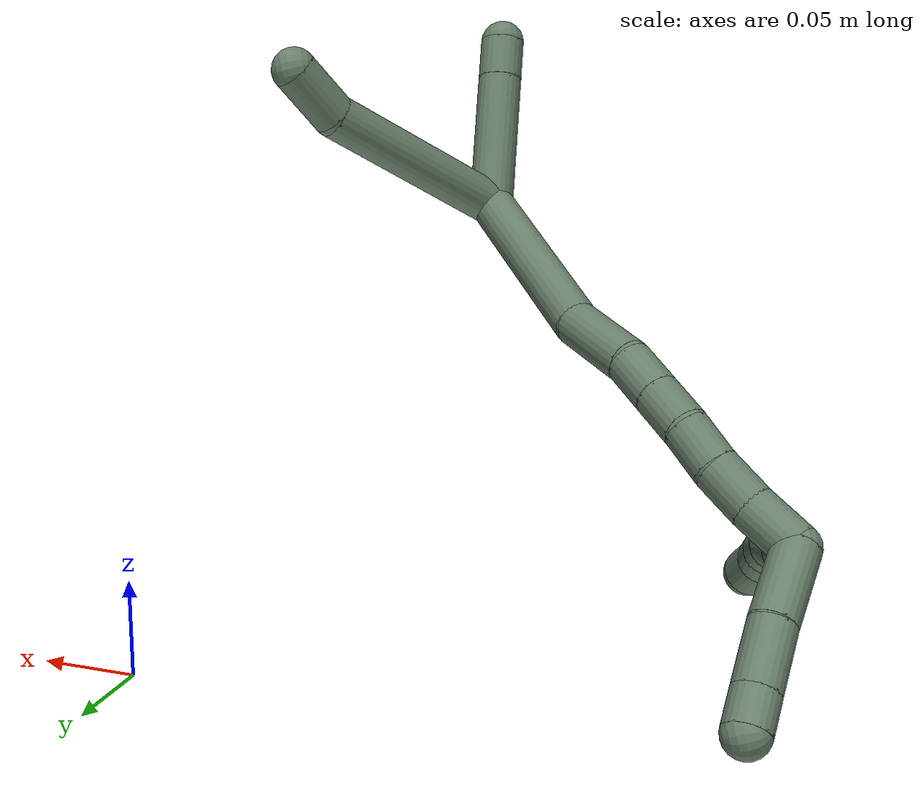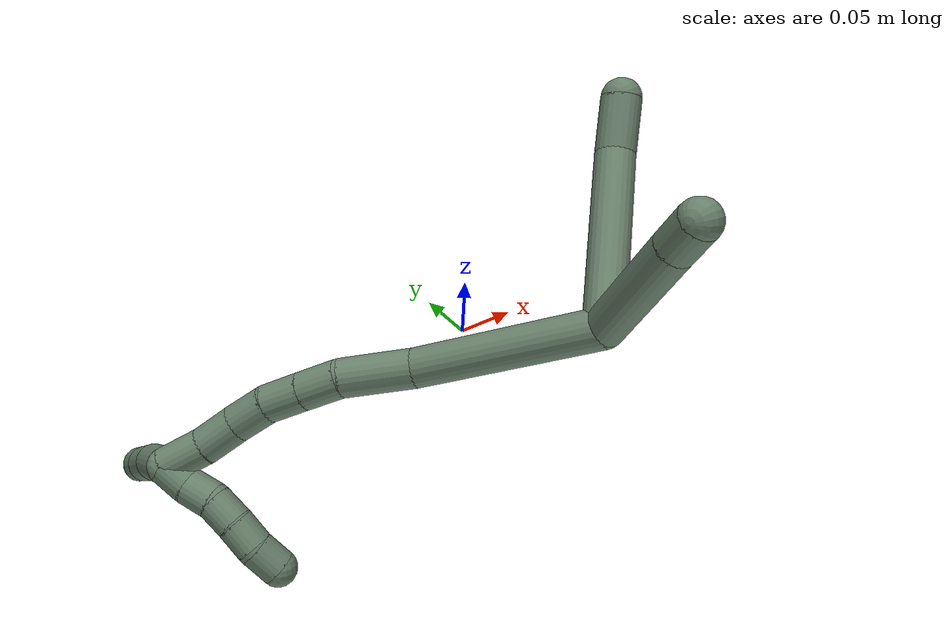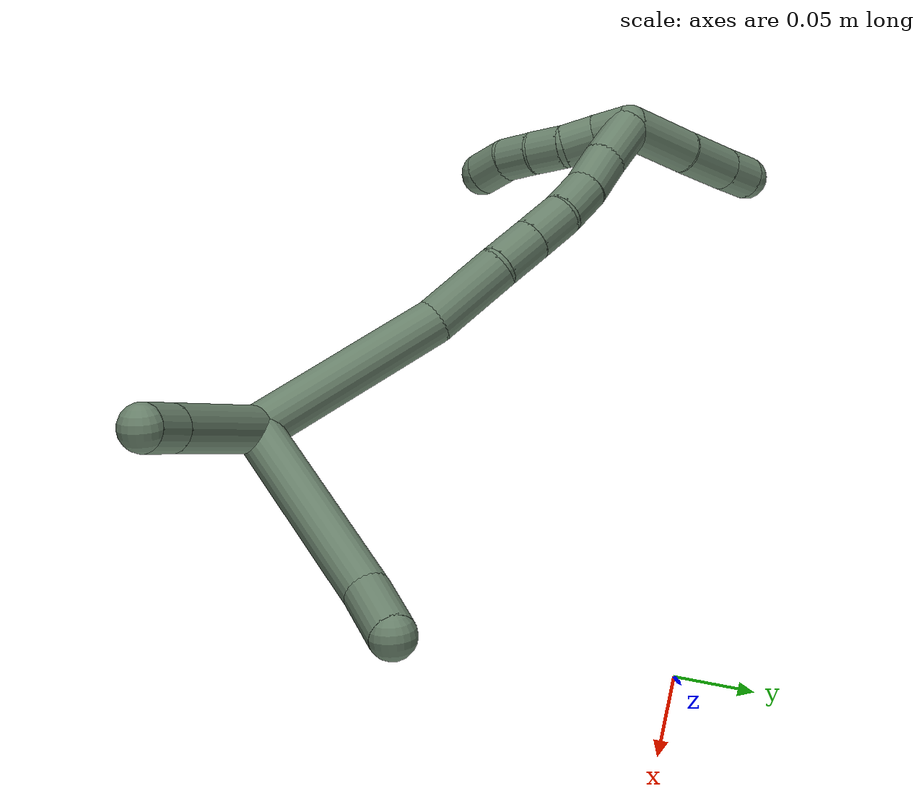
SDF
<sdf version="1.7">
 <world name="default">
  <model name="17">
   <static>0</static>
   <link name="17">
    <collision name="collision-cylinder-e_1_2_8">
     <pose>0.023086 0.041493 -0.032295 -2.23217 0.413718 -0.810968</pose>
     <geometry><cylinder><radius>0.0125</radius><length>0.114849</length></cylinder></geometry>
     <surface>
      <friction><ode><mu>1.16</mu><mu2>1.16</mu2><slip1>0</slip1><slip2>0</slip2></ode></friction>
      <contact><ode><kp>1e+06</kp><kd>1</kd><max_vel>0</max_vel><min_depth>0.001</min_depth></ode></contact>
     </surface>
    </collision>
    <visual name="visual-cylinder-e_1_2_8">
     <pose>0.023086 0.041493 -0.032295 -2.23217 0.413718 -0.810968</pose>
     <geometry><cylinder><radius>0.0125</radius><length>0.114849</length></cylinder></geometry>
     <material><ambient>0.415686 0.509804 0.423529 1</ambient></material>
    </visual>
    <collision name="collision-cylinder-e_2_8_6">
     <pose>0.057373 0.095111 -0.070624 -2.03257 0.691037 -1.05297</pose>
     <geometry><cylinder><radius>0.0125</radius><length>0.035151</length></cylinder></geometry>
     <surface>
      <friction><ode><mu>1.16</mu><mu2>1.16</mu2><slip1>0</slip1><slip2>0</slip2></ode></friction>
      <contact><ode><kp>1e+06</kp><kd>1</kd><max_vel>0</max_vel><min_depth>0.001</min_depth></ode></contact>
     </surface>
    </collision>
    <visual name="visual-cylinder-e_2_8_6">
     <pose>0.057373 0.095111 -0.070624 -2.03257 0.691037 -1.05297</pose>
     <geometry><cylinder><radius>0.0125</radius><length>0.035151</length></cylinder></geometry>
     <material><ambient>0.415686 0.509804 0.423529 1</ambient></material>
    </visual>
    <collision name="collision-cylinder-e_1_2_9">
     <pose>0.036976 -0.001656 0.009995 0.164209 1.30336 0.125386</pose>
     <geometry><cylinder><radius>0.0125</radius><length>0.076678</length></cylinder></geometry>
     <surface>
      <friction><ode><mu>1.16</mu><mu2>1.16</mu2><slip1>0</slip1><slip2>0</slip2></ode></friction>
      <contact><ode><kp>1e+06</kp><kd>1</kd><max_vel>0</max_vel><min_depth>0.001</min_depth></ode></contact>
     </surface>
    </collision>
    <visual name="visual-cylinder-e_1_2_9">
     <pose>0.036976 -0.001656 0.009995 0.164209 1.30336 0.125386</pose>
     <geometry><cylinder><radius>0.0125</radius><length>0.076678</length></cylinder></geometry>
     <material><ambient>0.415686 0.509804 0.423529 1</ambient></material>
    </visual>
    <collision name="collision-cylinder-e_2_9_5">
     <pose>0.085194 -0.004005 0.023009 0.225409 1.30196 0.172012</pose>
     <geometry><cylinder><radius>0.0125</radius><length>0.023322</length></cylinder></geometry>
     <surface>
      <friction><ode><mu>1.16</mu><mu2>1.16</mu2><slip1>0</slip1><slip2>0</slip2></ode></friction>
      <contact><ode><kp>1e+06</kp><kd>1</kd><max_vel>0</max_vel><min_depth>0.001</min_depth></ode></contact>
     </surface>
    </collision>
    <visual name="visual-cylinder-e_2_9_5">
     <pose>0.085194 -0.004005 0.023009 0.225409 1.30196 0.172012</pose>
     <geometry><cylinder><radius>0.0125</radius><length>0.023322</length></cylinder></geometry>
     <material><ambient>0.415686 0.509804 0.423529 1</ambient></material>
    </visual>
    <collision name="collision-cylinder-e_1_2_10">
     <pose>-0.047094 0.029453 0.01947 -0.986705 -0.927476 0.525394</pose>
     <geometry><cylinder><radius>0.0125</radius><length>0.117718</length></cylinder></geometry>
     <surface>
      <friction><ode><mu>1.16</mu><mu2>1.16</mu2><slip1>0</slip1><slip2>0</slip2></ode></friction>
      <contact><ode><kp>1e+06</kp><kd>1</kd><max_vel>0</max_vel><min_depth>0.001</min_depth></ode></contact>
     </surface>
    </collision>
    <visual name="visual-cylinder-e_1_2_10">
     <pose>-0.047094 0.029453 0.01947 -0.986705 -0.927476 0.525394</pose>
     <geometry><cylinder><radius>0.0125</radius><length>0.117718</length></cylinder></geometry>
     <material><ambient>0.415686 0.509804 0.423529 1</ambient></material>
    </visual>
    <collision name="collision-cylinder-e_2_10_11">
     <pose>-0.110179 0.071459 0.051128 -0.800069 -0.740519 0.325355</pose>
     <geometry><cylinder><radius>0.0125</radius><length>0.047406</length></cylinder></geometry>
     <surface>
      <friction><ode><mu>1.16</mu><mu2>1.16</mu2><slip1>0</slip1><slip2>0</slip2></ode></friction>
      <contact><ode><kp>1e+06</kp><kd>1</kd><max_vel>0</max_vel><min_depth>0.001</min_depth></ode></contact>
     </surface>
    </collision>
    <visual name="visual-cylinder-e_2_10_11">
     <pose>-0.110179 0.071459 0.051128 -0.800069 -0.740519 0.325355</pose>
     <geometry><cylinder><radius>0.0125</radius><length>0.047406</length></cylinder></geometry>
     <material><ambient>0.415686 0.509804 0.423529 1</ambient></material>
    </visual>
    <collision name="collision-cylinder-e_3_11_12">
     <pose>-0.137077 0.089178 0.068743 -0.760987 -0.96879 0.414896</pose>
     <geometry><cylinder><radius>0.0125</radius><length>0.026463</length></cylinder></geometry>
     <surface>
      <friction><ode><mu>1.16</mu><mu2>1.16</mu2><slip1>0</slip1><slip2>0</slip2></ode></friction>
      <contact><ode><kp>1e+06</kp><kd>1</kd><max_vel>0</max_vel><min_depth>0.001</min_depth></ode></contact>
     </surface>
    </collision>
    <visual name="visual-cylinder-e_3_11_12">
     <pose>-0.137077 0.089178 0.068743 -0.760987 -0.96879 0.414896</pose>
     <geometry><cylinder><radius>0.0125</radius><length>0.026463</length></cylinder></geometry>
     <material><ambient>0.415686 0.509804 0.423529 1</ambient></material>
    </visual>
    <collision name="collision-cylinder-e_4_12_13">
     <pose>-0.158642 0.099277 0.079489 -0.747523 -0.973246 0.409184</pose>
     <geometry><cylinder><radius>0.0125</radius><length>0.025787</length></cylinder></geometry>
     <surface>
      <friction><ode><mu>1.16</mu><mu2>1.16</mu2><slip1>0</slip1><slip2>0</slip2></ode></friction>
      <contact><ode><kp>1e+06</kp><kd>1</kd><max_vel>0</max_vel><min_depth>0.001</min_depth></ode></contact>
     </surface>
    </collision>
    <visual name="visual-cylinder-e_4_12_13">
     <pose>-0.158642 0.099277 0.079489 -0.747523 -0.973246 0.409184</pose>
     <geometry><cylinder><radius>0.0125</radius><length>0.025787</length></cylinder></geometry>
     <material><ambient>0.415686 0.509804 0.423529 1</ambient></material>
    </visual>
    <collision name="collision-cylinder-e_5_13_14">
     <pose>-0.180922 0.106788 0.089821 -0.47537 -1.1192 0.301207</pose>
     <geometry><cylinder><radius>0.0125</radius><length>0.025833</length></cylinder></geometry>
     <surface>
      <friction><ode><mu>1.16</mu><mu2>1.16</mu2><slip1>0</slip1><slip2>0</slip2></ode></friction>
      <contact><ode><kp>1e+06</kp><kd>1</kd><max_vel>0</max_vel><min_depth>0.001</min_depth></ode></contact>
     </surface>
    </collision>
    <visual name="visual-cylinder-e_5_13_14">
     <pose>-0.180922 0.106788 0.089821 -0.47537 -1.1192 0.301207</pose>
     <geometry><cylinder><radius>0.0125</radius><length>0.025833</length></cylinder></geometry>
     <material><ambient>0.415686 0.509804 0.423529 1</ambient></material>
    </visual>
    <collision name="collision-cylinder-e_6_14_15">
     <pose>-0.204084 0.111011 0.101391 -0.245431 -1.04083 0.141135</pose>
     <geometry><cylinder><radius>0.0125</radius><length>0.02675</length></cylinder></geometry>
     <surface>
      <friction><ode><mu>1.16</mu><mu2>1.16</mu2><slip1>0</slip1><slip2>0</slip2></ode></friction>
      <contact><ode><kp>1e+06</kp><kd>1</kd><max_vel>0</max_vel><min_depth>0.001</min_depth></ode></contact>
     </surface>
    </collision>
    <visual name="visual-cylinder-e_6_14_15">
     <pose>-0.204084 0.111011 0.101391 -0.245431 -1.04083 0.141135</pose>
     <geometry><cylinder><radius>0.0125</radius><length>0.02675</length></cylinder></geometry>
     <material><ambient>0.415686 0.509804 0.423529 1</ambient></material>
    </visual>
    <collision name="collision-cylinder-e_7_15_1">
     <pose>-0.227762 0.116093 0.116102 -0.399279 -0.940875 0.205059</pose>
     <geometry><cylinder><radius>0.0125</radius><length>0.030042</length></cylinder></geometry>
     <surface>
      <friction><ode><mu>1.16</mu><mu2>1.16</mu2><slip1>0</slip1><slip2>0</slip2></ode></friction>
      <contact><ode><kp>1e+06</kp><kd>1</kd><max_vel>0</max_vel><min_depth>0.001</min_depth></ode></contact>
     </surface>
    </collision>
    <visual name="visual-cylinder-e_7_15_1">
     <pose>-0.227762 0.116093 0.116102 -0.399279 -0.940875 0.205059</pose>
     <geometry><cylinder><radius>0.0125</radius><length>0.030042</length></cylinder></geometry>
     <material><ambient>0.415686 0.509804 0.423529 1</ambient></material>
    </visual>
    <collision name="collision-cylinder-e_1_1_16">
     <pose>-0.256816 0.129944 0.114774 -2.30945 -0.876584 1.6297</pose>
     <geometry><cylinder><radius>0.0125</radius><length>0.044017</length></cylinder></geometry>
     <surface>
      <friction><ode><mu>1.16</mu><mu2>1.16</mu2><slip1>0</slip1><slip2>0</slip2></ode></friction>
      <contact><ode><kp>1e+06</kp><kd>1</kd><max_vel>0</max_vel><min_depth>0.001</min_depth></ode></contact>
     </surface>
    </collision>
    <visual name="visual-cylinder-e_1_1_16">
     <pose>-0.256816 0.129944 0.114774 -2.30945 -0.876584 1.6297</pose>
     <geometry><cylinder><radius>0.0125</radius><length>0.044017</length></cylinder></geometry>
     <material><ambient>0.415686 0.509804 0.423529 1</ambient></material>
    </visual>
    <collision name="collision-cylinder-e_2_16_17">
     <pose>-0.288301 0.14744 0.098221 -2.35537 -0.96879 1.80672</pose>
     <geometry><cylinder><radius>0.0125</radius><length>0.035356</length></cylinder></geometry>
     <surface>
      <friction><ode><mu>1.16</mu><mu2>1.16</mu2><slip1>0</slip1><slip2>0</slip2></ode></friction>
      <contact><ode><kp>1e+06</kp><kd>1</kd><max_vel>0</max_vel><min_depth>0.001</min_depth></ode></contact>
     </surface>
    </collision>
    <visual name="visual-cylinder-e_2_16_17">
     <pose>-0.288301 0.14744 0.098221 -2.35537 -0.96879 1.80672</pose>
     <geometry><cylinder><radius>0.0125</radius><length>0.035356</length></cylinder></geometry>
     <material><ambient>0.415686 0.509804 0.423529 1</ambient></material>
    </visual>
    <collision name="collision-cylinder-e_3_17_4">
     <pose>-0.311336 0.158846 0.087144 -2.31808 -0.962839 1.74902</pose>
     <geometry><cylinder><radius>0.0125</radius><length>0.020627</length></cylinder></geometry>
     <surface>
      <friction><ode><mu>1.16</mu><mu2>1.16</mu2><slip1>0</slip1><slip2>0</slip2></ode></friction>
      <contact><ode><kp>1e+06</kp><kd>1</kd><max_vel>0</max_vel><min_depth>0.001</min_depth></ode></contact>
     </surface>
    </collision>
    <visual name="visual-cylinder-e_3_17_4">
     <pose>-0.311336 0.158846 0.087144 -2.31808 -0.962839 1.74902</pose>
     <geometry><cylinder><radius>0.0125</radius><length>0.020627</length></cylinder></geometry>
     <material><ambient>0.415686 0.509804 0.423529 1</ambient></material>
    </visual>
    <collision name="collision-cylinder-e_1_1_18">
     <pose>-0.239247 0.109925 0.121562 1.84398 0.065368 0.086178</pose>
     <geometry><cylinder><radius>0.0125</radius><length>0.02</length></cylinder></geometry>
     <surface>
      <friction><ode><mu>1.16</mu><mu2>1.16</mu2><slip1>0</slip1><slip2>0</slip2></ode></friction>
      <contact><ode><kp>1e+06</kp><kd>1</kd><max_vel>0</max_vel><min_depth>0.001</min_depth></ode></contact>
     </surface>
    </collision>
    <visual name="visual-cylinder-e_1_1_18">
     <pose>-0.239247 0.109925 0.121562 1.84398 0.065368 0.086178</pose>
     <geometry><cylinder><radius>0.0125</radius><length>0.02</length></cylinder></geometry>
     <material><ambient>0.415686 0.509804 0.423529 1</ambient></material>
    </visual>
    <collision name="collision-cylinder-e_2_18_19">
     <pose>-0.235867 0.0911 0.116109 1.86189 0.276241 0.369259</pose>
     <geometry><cylinder><radius>0.0125</radius><length>0.02</length></cylinder></geometry>
     <surface>
      <friction><ode><mu>1.16</mu><mu2>1.16</mu2><slip1>0</slip1><slip2>0</slip2></ode></friction>
      <contact><ode><kp>1e+06</kp><kd>1</kd><max_vel>0</max_vel><min_depth>0.001</min_depth></ode></contact>
     </surface>
    </collision>
    <visual name="visual-cylinder-e_2_18_19">
     <pose>-0.235867 0.0911 0.116109 1.86189 0.276241 0.369259</pose>
     <geometry><cylinder><radius>0.0125</radius><length>0.02</length></cylinder></geometry>
     <material><ambient>0.415686 0.509804 0.423529 1</ambient></material>
    </visual>
    <collision name="collision-cylinder-e_3_19_20">
     <pose>-0.233301 0.072093 0.111317 1.77531 -0.016197 -0.019901</pose>
     <geometry><cylinder><radius>0.0125</radius><length>0.02</length></cylinder></geometry>
     <surface>
      <friction><ode><mu>1.16</mu><mu2>1.16</mu2><slip1>0</slip1><slip2>0</slip2></ode></friction>
      <contact><ode><kp>1e+06</kp><kd>1</kd><max_vel>0</max_vel><min_depth>0.001</min_depth></ode></contact>
     </surface>
    </collision>
    <visual name="visual-cylinder-e_3_19_20">
     <pose>-0.233301 0.072093 0.111317 1.77531 -0.016197 -0.019901</pose>
     <geometry><cylinder><radius>0.0125</radius><length>0.02</length></cylinder></geometry>
     <material><ambient>0.415686 0.509804 0.423529 1</ambient></material>
    </visual>
    <collision name="collision-cylinder-e_4_20_21">
     <pose>-0.234895 0.052681 0.106972 1.80688 -0.143659 -0.182126</pose>
     <geometry><cylinder><radius>0.0125</radius><length>0.02</length></cylinder></geometry>
     <surface>
      <friction><ode><mu>1.16</mu><mu2>1.16</mu2><slip1>0</slip1><slip2>0</slip2></ode></friction>
      <contact><ode><kp>1e+06</kp><kd>1</kd><max_vel>0</max_vel><min_depth>0.001</min_depth></ode></contact>
     </surface>
    </collision>
    <visual name="visual-cylinder-e_4_20_21">
     <pose>-0.234895 0.052681 0.106972 1.80688 -0.143659 -0.182126</pose>
     <geometry><cylinder><radius>0.0125</radius><length>0.02</length></cylinder></geometry>
     <material><ambient>0.415686 0.509804 0.423529 1</ambient></material>
    </visual>
    <collision name="collision-cylinder-e_5_21_3">
     <pose>-0.238051 0.03431 0.10013 2.04829 -0.173326 -0.283636</pose>
     <geometry><cylinder><radius>0.0125</radius><length>0.02</length></cylinder></geometry>
     <surface>
      <friction><ode><mu>1.16</mu><mu2>1.16</mu2><slip1>0</slip1><slip2>0</slip2></ode></friction>
      <contact><ode><kp>1e+06</kp><kd>1</kd><max_vel>0</max_vel><min_depth>0.001</min_depth></ode></contact>
     </surface>
    </collision>
    <visual name="visual-cylinder-e_5_21_3">
     <pose>-0.238051 0.03431 0.10013 2.04829 -0.173326 -0.283636</pose>
     <geometry><cylinder><radius>0.0125</radius><length>0.02</length></cylinder></geometry>
     <material><ambient>0.415686 0.509804 0.423529 1</ambient></material>
    </visual>
    <collision name="collision-sphere-3">
     <pose>-0.239776 0.025561 0.095604 0 -0 0</pose>
     <geometry><sphere><radius>0.0125</radius></sphere></geometry>
     <surface>
      <friction><ode><mu>1.16</mu><mu2>1.16</mu2><slip1>0</slip1><slip2>0</slip2></ode></friction>
      <contact><ode><kp>1e+06</kp><kd>1</kd><max_vel>0</max_vel><min_depth>0.001</min_depth></ode></contact>
     </surface>
    </collision>
    <visual name="visual-sphere-3">
     <pose>-0.239776 0.025561 0.095604 0 -0 0</pose>
     <geometry><sphere><radius>0.0125</radius></sphere></geometry>
     <material><ambient>0.415686 0.509804 0.423529 1</ambient></material>
    </visual>
    <collision name="collision-sphere-21">
     <pose>-0.236327 0.043058 0.104657 0 -0 0</pose>
     <geometry><sphere><radius>0.0125</radius></sphere></geometry>
     <surface>
      <friction><ode><mu>1.16</mu><mu2>1.16</mu2><slip1>0</slip1><slip2>0</slip2></ode></friction>
      <contact><ode><kp>1e+06</kp><kd>1</kd><max_vel>0</max_vel><min_depth>0.001</min_depth></ode></contact>
     </surface>
    </collision>
    <visual name="visual-sphere-21">
     <pose>-0.236327 0.043058 0.104657 0 -0 0</pose>
     <geometry><sphere><radius>0.0125</radius></sphere></geometry>
     <material><ambient>0.415686 0.509804 0.423529 1</ambient></material>
    </visual>
    <collision name="collision-sphere-20">
     <pose>-0.233463 0.062303 0.109287 0 -0 0</pose>
     <geometry><sphere><radius>0.0125</radius></sphere></geometry>
     <surface>
      <friction><ode><mu>1.16</mu><mu2>1.16</mu2><slip1>0</slip1><slip2>0</slip2></ode></friction>
      <contact><ode><kp>1e+06</kp><kd>1</kd><max_vel>0</max_vel><min_depth>0.001</min_depth></ode></contact>
     </surface>
    </collision>
    <visual name="visual-sphere-20">
     <pose>-0.233463 0.062303 0.109287 0 -0 0</pose>
     <geometry><sphere><radius>0.0125</radius></sphere></geometry>
     <material><ambient>0.415686 0.509804 0.423529 1</ambient></material>
    </visual>
    <collision name="collision-sphere-19">
     <pose>-0.233139 0.081884 0.113348 0 -0 0</pose>
     <geometry><sphere><radius>0.0125</radius></sphere></geometry>
     <surface>
      <friction><ode><mu>1.16</mu><mu2>1.16</mu2><slip1>0</slip1><slip2>0</slip2></ode></friction>
      <contact><ode><kp>1e+06</kp><kd>1</kd><max_vel>0</max_vel><min_depth>0.001</min_depth></ode></contact>
     </surface>
    </collision>
    <visual name="visual-sphere-19">
     <pose>-0.233139 0.081884 0.113348 0 -0 0</pose>
     <geometry><sphere><radius>0.0125</radius></sphere></geometry>
     <material><ambient>0.415686 0.509804 0.423529 1</ambient></material>
    </visual>
    <collision name="collision-sphere-10">
     <pose>-0.094187 0.058907 0.038939 0 -0 0</pose>
     <geometry><sphere><radius>0.0125</radius></sphere></geometry>
     <surface>
      <friction><ode><mu>1.16</mu><mu2>1.16</mu2><slip1>0</slip1><slip2>0</slip2></ode></friction>
      <contact><ode><kp>1e+06</kp><kd>1</kd><max_vel>0</max_vel><min_depth>0.001</min_depth></ode></contact>
     </surface>
    </collision>
    <visual name="visual-sphere-10">
     <pose>-0.094187 0.058907 0.038939 0 -0 0</pose>
     <geometry><sphere><radius>0.0125</radius></sphere></geometry>
     <material><ambient>0.415686 0.509804 0.423529 1</ambient></material>
    </visual>
    <collision name="collision-sphere-5">
     <pose>0.096437 -0.004697 0.026028 0 -0 0</pose>
     <geometry><sphere><radius>0.0125</radius></sphere></geometry>
     <surface>
      <friction><ode><mu>1.16</mu><mu2>1.16</mu2><slip1>0</slip1><slip2>0</slip2></ode></friction>
      <contact><ode><kp>1e+06</kp><kd>1</kd><max_vel>0</max_vel><min_depth>0.001</min_depth></ode></contact>
     </surface>
    </collision>
    <visual name="visual-sphere-5">
     <pose>0.096437 -0.004697 0.026028 0 -0 0</pose>
     <geometry><sphere><radius>0.0125</radius></sphere></geometry>
     <material><ambient>0.415686 0.509804 0.423529 1</ambient></material>
    </visual>
    <collision name="collision-sphere-6">
     <pose>0.068574 0.107236 -0.076658 0 -0 0</pose>
     <geometry><sphere><radius>0.0125</radius></sphere></geometry>
     <surface>
      <friction><ode><mu>1.16</mu><mu2>1.16</mu2><slip1>0</slip1><slip2>0</slip2></ode></friction>
      <contact><ode><kp>1e+06</kp><kd>1</kd><max_vel>0</max_vel><min_depth>0.001</min_depth></ode></contact>
     </surface>
    </collision>
    <visual name="visual-sphere-6">
     <pose>0.068574 0.107236 -0.076658 0 -0 0</pose>
     <geometry><sphere><radius>0.0125</radius></sphere></geometry>
     <material><ambient>0.415686 0.509804 0.423529 1</ambient></material>
    </visual>
    <collision name="collision-sphere-9">
     <pose>0.073952 -0.003312 0.01999 0 -0 0</pose>
     <geometry><sphere><radius>0.0125</radius></sphere></geometry>
     <surface>
      <friction><ode><mu>1.16</mu><mu2>1.16</mu2><slip1>0</slip1><slip2>0</slip2></ode></friction>
      <contact><ode><kp>1e+06</kp><kd>1</kd><max_vel>0</max_vel><min_depth>0.001</min_depth></ode></contact>
     </surface>
    </collision>
    <visual name="visual-sphere-9">
     <pose>0.073952 -0.003312 0.01999 0 -0 0</pose>
     <geometry><sphere><radius>0.0125</radius></sphere></geometry>
     <material><ambient>0.415686 0.509804 0.423529 1</ambient></material>
    </visual>
    <collision name="collision-sphere-2">
     <geometry><sphere><radius>0.0125</radius></sphere></geometry>
     <surface>
      <friction><ode><mu>1.16</mu><mu2>1.16</mu2><slip1>0</slip1><slip2>0</slip2></ode></friction>
      <contact><ode><kp>1e+06</kp><kd>1</kd><max_vel>0</max_vel><min_depth>0.001</min_depth></ode></contact>
     </surface>
    </collision>
    <visual name="visual-sphere-2">
     <geometry><sphere><radius>0.0125</radius></sphere></geometry>
     <material><ambient>0.415686 0.509804 0.423529 1</ambient></material>
    </visual>
    <collision name="collision-sphere-8">
     <pose>0.046171 0.082986 -0.06459 0 -0 0</pose>
     <geometry><sphere><radius>0.0125</radius></sphere></geometry>
     <surface>
      <friction><ode><mu>1.16</mu><mu2>1.16</mu2><slip1>0</slip1><slip2>0</slip2></ode></friction>
      <contact><ode><kp>1e+06</kp><kd>1</kd><max_vel>0</max_vel><min_depth>0.001</min_depth></ode></contact>
     </surface>
    </collision>
    <visual name="visual-sphere-8">
     <pose>0.046171 0.082986 -0.06459 0 -0 0</pose>
     <geometry><sphere><radius>0.0125</radius></sphere></geometry>
     <material><ambient>0.415686 0.509804 0.423529 1</ambient></material>
    </visual>
    <collision name="collision-sphere-11">
     <pose>-0.126171 0.08401 0.063317 0 -0 0</pose>
     <geometry><sphere><radius>0.0125</radius></sphere></geometry>
     <surface>
      <friction><ode><mu>1.16</mu><mu2>1.16</mu2><slip1>0</slip1><slip2>0</slip2></ode></friction>
      <contact><ode><kp>1e+06</kp><kd>1</kd><max_vel>0</max_vel><min_depth>0.001</min_depth></ode></contact>
     </surface>
    </collision>
    <visual name="visual-sphere-11">
     <pose>-0.126171 0.08401 0.063317 0 -0 0</pose>
     <geometry><sphere><radius>0.0125</radius></sphere></geometry>
     <material><ambient>0.415686 0.509804 0.423529 1</ambient></material>
    </visual>
    <collision name="collision-sphere-12">
     <pose>-0.147982 0.094345 0.074169 0 -0 0</pose>
     <geometry><sphere><radius>0.0125</radius></sphere></geometry>
     <surface>
      <friction><ode><mu>1.16</mu><mu2>1.16</mu2><slip1>0</slip1><slip2>0</slip2></ode></friction>
      <contact><ode><kp>1e+06</kp><kd>1</kd><max_vel>0</max_vel><min_depth>0.001</min_depth></ode></contact>
     </surface>
    </collision>
    <visual name="visual-sphere-12">
     <pose>-0.147982 0.094345 0.074169 0 -0 0</pose>
     <geometry><sphere><radius>0.0125</radius></sphere></geometry>
     <material><ambient>0.415686 0.509804 0.423529 1</ambient></material>
    </visual>
    <collision name="collision-sphere-13">
     <pose>-0.169301 0.104208 0.084809 0 -0 0</pose>
     <geometry><sphere><radius>0.0125</radius></sphere></geometry>
     <surface>
      <friction><ode><mu>1.16</mu><mu2>1.16</mu2><slip1>0</slip1><slip2>0</slip2></ode></friction>
      <contact><ode><kp>1e+06</kp><kd>1</kd><max_vel>0</max_vel><min_depth>0.001</min_depth></ode></contact>
     </surface>
    </collision>
    <visual name="visual-sphere-13">
     <pose>-0.169301 0.104208 0.084809 0 -0 0</pose>
     <geometry><sphere><radius>0.0125</radius></sphere></geometry>
     <material><ambient>0.415686 0.509804 0.423529 1</ambient></material>
    </visual>
    <collision name="collision-sphere-14">
     <pose>-0.192544 0.109368 0.094832 0 -0 0</pose>
     <geometry><sphere><radius>0.0125</radius></sphere></geometry>
     <surface>
      <friction><ode><mu>1.16</mu><mu2>1.16</mu2><slip1>0</slip1><slip2>0</slip2></ode></friction>
      <contact><ode><kp>1e+06</kp><kd>1</kd><max_vel>0</max_vel><min_depth>0.001</min_depth></ode></contact>
     </surface>
    </collision>
    <visual name="visual-sphere-14">
     <pose>-0.192544 0.109368 0.094832 0 -0 0</pose>
     <geometry><sphere><radius>0.0125</radius></sphere></geometry>
     <material><ambient>0.415686 0.509804 0.423529 1</ambient></material>
    </visual>
    <collision name="collision-sphere-15">
     <pose>-0.215624 0.112653 0.107949 0 -0 0</pose>
     <geometry><sphere><radius>0.0125</radius></sphere></geometry>
     <surface>
      <friction><ode><mu>1.16</mu><mu2>1.16</mu2><slip1>0</slip1><slip2>0</slip2></ode></friction>
      <contact><ode><kp>1e+06</kp><kd>1</kd><max_vel>0</max_vel><min_depth>0.001</min_depth></ode></contact>
     </surface>
    </collision>
    <visual name="visual-sphere-15">
     <pose>-0.215624 0.112653 0.107949 0 -0 0</pose>
     <geometry><sphere><radius>0.0125</radius></sphere></geometry>
     <material><ambient>0.415686 0.509804 0.423529 1</ambient></material>
    </visual>
    <collision name="collision-sphere-1">
     <pose>-0.239901 0.119533 0.124255 0 -0 0</pose>
     <geometry><sphere><radius>0.0125</radius></sphere></geometry>
     <surface>
      <friction><ode><mu>1.16</mu><mu2>1.16</mu2><slip1>0</slip1><slip2>0</slip2></ode></friction>
      <contact><ode><kp>1e+06</kp><kd>1</kd><max_vel>0</max_vel><min_depth>0.001</min_depth></ode></contact>
     </surface>
    </collision>
    <visual name="visual-sphere-1">
     <pose>-0.239901 0.119533 0.124255 0 -0 0</pose>
     <geometry><sphere><radius>0.0125</radius></sphere></geometry>
     <material><ambient>0.415686 0.509804 0.423529 1</ambient></material>
    </visual>
    <collision name="collision-sphere-18">
     <pose>-0.238594 0.100316 0.11887 0 -0 0</pose>
     <geometry><sphere><radius>0.0125</radius></sphere></geometry>
     <surface>
      <friction><ode><mu>1.16</mu><mu2>1.16</mu2><slip1>0</slip1><slip2>0</slip2></ode></friction>
      <contact><ode><kp>1e+06</kp><kd>1</kd><max_vel>0</max_vel><min_depth>0.001</min_depth></ode></contact>
     </surface>
    </collision>
    <visual name="visual-sphere-18">
     <pose>-0.238594 0.100316 0.11887 0 -0 0</pose>
     <geometry><sphere><radius>0.0125</radius></sphere></geometry>
     <material><ambient>0.415686 0.509804 0.423529 1</ambient></material>
    </visual>
    <collision name="collision-sphere-16">
     <pose>-0.273731 0.140355 0.105294 0 -0 0</pose>
     <geometry><sphere><radius>0.0125</radius></sphere></geometry>
     <surface>
      <friction><ode><mu>1.16</mu><mu2>1.16</mu2><slip1>0</slip1><slip2>0</slip2></ode></friction>
      <contact><ode><kp>1e+06</kp><kd>1</kd><max_vel>0</max_vel><min_depth>0.001</min_depth></ode></contact>
     </surface>
    </collision>
    <visual name="visual-sphere-16">
     <pose>-0.273731 0.140355 0.105294 0 -0 0</pose>
     <geometry><sphere><radius>0.0125</radius></sphere></geometry>
     <material><ambient>0.415686 0.509804 0.423529 1</ambient></material>
    </visual>
    <collision name="collision-sphere-17">
     <pose>-0.302871 0.154525 0.091148 0 -0 0</pose>
     <geometry><sphere><radius>0.0125</radius></sphere></geometry>
     <surface>
      <friction><ode><mu>1.16</mu><mu2>1.16</mu2><slip1>0</slip1><slip2>0</slip2></ode></friction>
      <contact><ode><kp>1e+06</kp><kd>1</kd><max_vel>0</max_vel><min_depth>0.001</min_depth></ode></contact>
     </surface>
    </collision>
    <visual name="visual-sphere-17">
     <pose>-0.302871 0.154525 0.091148 0 -0 0</pose>
     <geometry><sphere><radius>0.0125</radius></sphere></geometry>
     <material><ambient>0.415686 0.509804 0.423529 1</ambient></material>
    </visual>
    <collision name="collision-sphere-4">
     <pose>-0.319802 0.163167 0.08314 0 -0 0</pose>
     <geometry><sphere><radius>0.0125</radius></sphere></geometry>
     <surface>
      <friction><ode><mu>1.16</mu><mu2>1.16</mu2><slip1>0</slip1><slip2>0</slip2></ode></friction>
      <contact><ode><kp>1e+06</kp><kd>1</kd><max_vel>0</max_vel><min_depth>0.001</min_depth></ode></contact>
     </surface>
    </collision>
    <visual name="visual-sphere-4">
     <pose>-0.319802 0.163167 0.08314 0 -0 0</pose>
     <geometry><sphere><radius>0.0125</radius></sphere></geometry>
     <material><ambient>0.415686 0.509804 0.423529 1</ambient></material>
    </visual>
    <inertial>
     <pose>-0.103356 0.067054 0.044881 0 -0 0</pose>
     <mass>0.75</mass>
     <inertia>
      <ixx>0.000144</ixx>
      <ixy>0</ixy>
      <ixz>0</ixz>
      <iyy>0.000143</iyy>
      <iyz>0</iyz>
      <izz>-0.000129</izz>
     </inertia>
    </inertial>
   </link>
   <pose>-0.10055 -0.257487 0.203768 0.987825 -1.064 -0.80217</pose>
  </model>
 </world>
</sdf>
